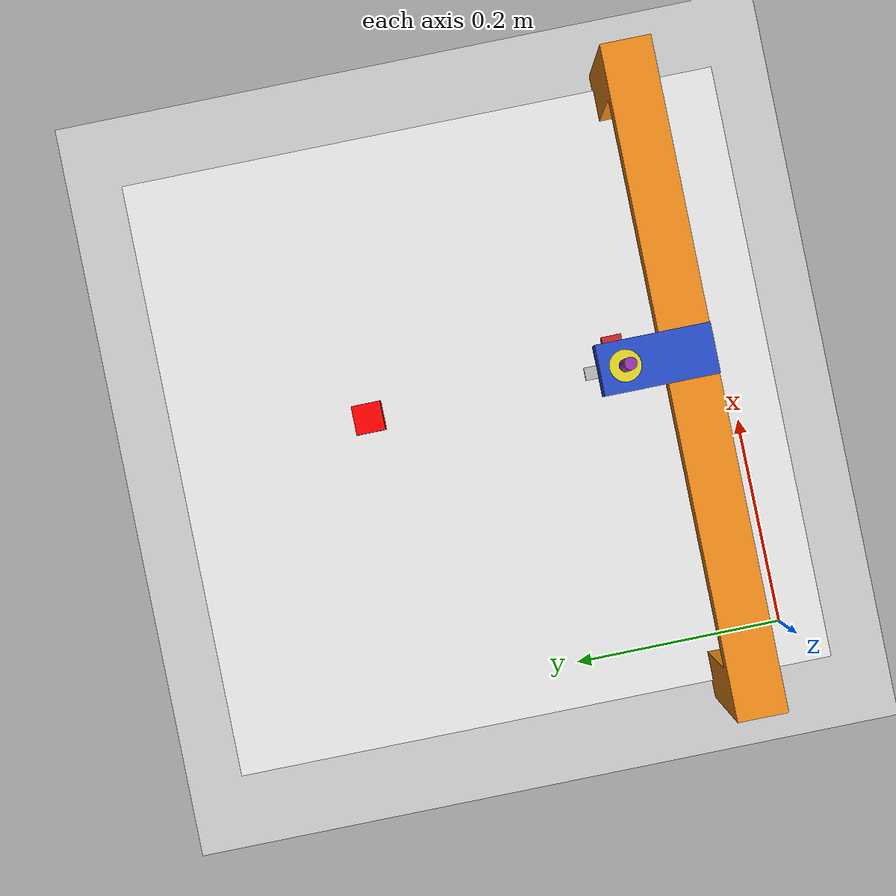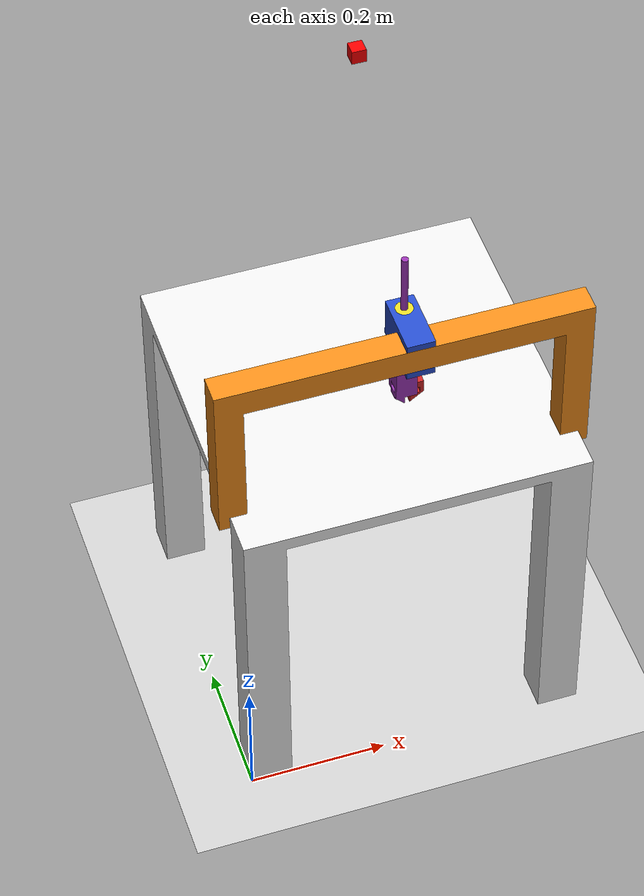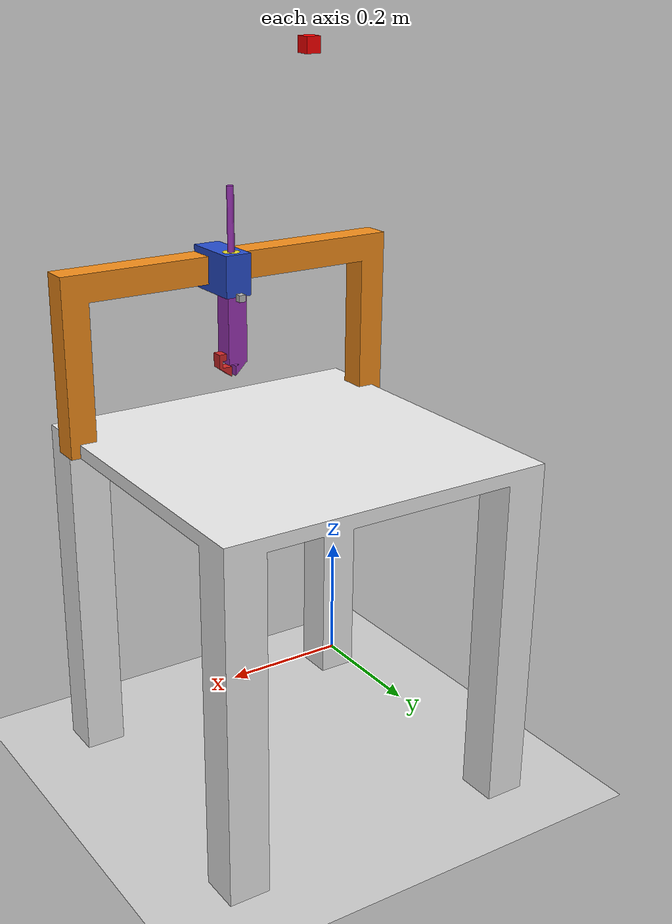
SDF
<sdf version="1.6">
 <world name="default">
  <light name="sun" type="directional">
   <pose>0 0 10 0 -0 0</pose>
   <diffuse>0.8 0.8 0.8 1</diffuse>
   <specular>0.1 0.1 0.1 1</specular>
   <attenuation>
    <range>1000</range>
    <constant>0.9</constant>
    <linear>0.01</linear>
    <quadratic>0.001</quadratic>
   </attenuation>
   <direction>-0.5 0.5 -1</direction>
  </light>
  <model name="ground_plane">
   <static>1</static>
   <link name="link">
    <collision name="collision">
     <geometry><plane><normal>0 0 1</normal><size>100 100</size></plane></geometry>
     <surface><friction><ode><mu>100</mu><mu2>50</mu2></ode></friction></surface>
    </collision>
    <visual name="visual">
     <cast_shadows>0</cast_shadows>
     <geometry><plane><normal>0 0 1</normal><size>100 100</size></plane></geometry>
     <material>
      <script><uri>file://media/materials/scripts/gazebo.material</uri><name>Gazebo/Grey</name></script>
     </material>
    </visual>
   </link>
  </model>
  <gravity>0 0 -9.8</gravity>
  <magnetic_field>6e-06 2.3e-05 -4.2e-05</magnetic_field>
  <atmosphere type="adiabatic"/>
  <physics name="default_physics" default="0" type="ode">
   <max_step_size>0.001</max_step_size>
   <real_time_factor>1</real_time_factor>
   <real_time_update_rate>1000</real_time_update_rate>
  </physics>
  <scene><ambient>0.4 0.4 0.4 1</ambient><background>0.7 0.7 0.7 1</background><shadows>1</shadows></scene>
  <spherical_coordinates>
   <surface_model>EARTH_WGS84</surface_model>
   <latitude_deg>0</latitude_deg>
   <longitude_deg>0</longitude_deg>
   <elevation>0</elevation>
   <heading_deg>0</heading_deg>
  </spherical_coordinates>
  <model name="robot">
   <link name="base_link">
    <inertial>
     <pose>0.249025 0.288536 0.424096 0 -0 0</pose>
     <mass>1200.2</mass>
     <inertia><ixx>0</ixx><ixy>0</ixy><ixz>0</ixz><iyy>0</iyy><iyz>0</iyz><izz>0</izz></inertia>
    </inertial>
    <collision name="base_link_collision">
     <geometry>
      <mesh><scale>1 1 1</scale><uri>/home/amin/robot_project/src/robot_sim/meshes/base_link.STL</uri></mesh>
     </geometry>
     <surface>
      <friction>
       <ode><mu>1</mu><mu2>1</mu2><fdir1>0 0 0</fdir1><slip1>0</slip1><slip2>0</slip2></ode>
       <torsional>
        <coefficient>1</coefficient>
        <patch_radius>0</patch_radius>
        <surface_radius>0</surface_radius>
        <use_patch_radius>1</use_patch_radius>
        <ode><slip>0</slip></ode>
       </torsional>
      </friction>
      <bounce><restitution_coefficient>0</restitution_coefficient><threshold>1e+06</threshold></bounce>
      <contact>
       <collide_without_contact>0</collide_without_contact>
       <collide_without_contact_bitmask>1</collide_without_contact_bitmask>
       <collide_bitmask>1</collide_bitmask>
       <ode>
        <soft_cfm>0</soft_cfm>
        <soft_erp>0.2</soft_erp>
        <kp>1e+10</kp>
        <kd>1</kd>
        <max_vel>0.1</max_vel>
        <min_depth>0.001</min_depth>
       </ode>
       <bullet>
        <split_impulse>1</split_impulse>
        <split_impulse_penetration_threshold>-0.01</split_impulse_penetration_threshold>
        <soft_cfm>0</soft_cfm>
        <soft_erp>0.2</soft_erp>
        <kp>1e+07</kp>
        <kd>1</kd>
       </bullet>
      </contact>
     </surface>
    </collision>
    <visual name="base_link_visual">
     <geometry>
      <mesh><scale>1 1 1</scale><uri>/home/amin/robot_project/src/robot_sim/meshes/base_link.STL</uri></mesh>
     </geometry>
     <material>
      <script><name>Gazebo/White</name><uri>file://media/materials/scripts/gazebo.material</uri></script>
     </material>
    </visual>
   </link>
   <link name="p1">
    <pose>0.249025 0.1 0.5 0 -0 0</pose>
    <inertial>
     <pose>0 0.185556 0.02 0 -0 0</pose>
     <mass>1.512</mass>
     <inertia><ixx>0</ixx><ixy>0</ixy><ixz>0</ixz><iyy>0</iyy><iyz>0</iyz><izz>0</izz></inertia>
    </inertial>
    <collision name="p1_collision">
     <geometry>
      <mesh><scale>1 1 1</scale><uri>/home/amin/robot_project/src/robot_sim/meshes/p1.STL</uri></mesh>
     </geometry>
     <surface>
      <friction>
       <ode><mu>1</mu><mu2>1</mu2><fdir1>0 0 0</fdir1><slip1>0</slip1><slip2>0</slip2></ode>
       <torsional>
        <coefficient>1</coefficient>
        <patch_radius>0</patch_radius>
        <surface_radius>0</surface_radius>
        <use_patch_radius>1</use_patch_radius>
        <ode><slip>0</slip></ode>
       </torsional>
      </friction>
      <bounce><restitution_coefficient>0</restitution_coefficient><threshold>1e+06</threshold></bounce>
      <contact>
       <collide_without_contact>0</collide_without_contact>
       <collide_without_contact_bitmask>1</collide_without_contact_bitmask>
       <collide_bitmask>1</collide_bitmask>
       <ode>
        <soft_cfm>0</soft_cfm>
        <soft_erp>0.2</soft_erp>
        <kp>1e+10</kp>
        <kd>1</kd>
        <max_vel>0.1</max_vel>
        <min_depth>0.001</min_depth>
       </ode>
       <bullet>
        <split_impulse>1</split_impulse>
        <split_impulse_penetration_threshold>-0.01</split_impulse_penetration_threshold>
        <soft_cfm>0</soft_cfm>
        <soft_erp>0.2</soft_erp>
        <kp>1e+07</kp>
        <kd>1</kd>
       </bullet>
      </contact>
     </surface>
    </collision>
    <visual name="p1_visual">
     <geometry>
      <mesh><scale>1 1 1</scale><uri>/home/amin/robot_project/src/robot_sim/meshes/p1.STL</uri></mesh>
     </geometry>
     <material>
      <script><name>Gazebo/Orange</name><uri>file://media/materials/scripts/gazebo.material</uri></script>
     </material>
    </visual>
   </link>
   <joint name="j1" type="prismatic">
    <child>p1</child>
    <parent>base_link</parent>
    <axis>
     <xyz>0 1 0</xyz>
     <limit><lower>-0.05</lower><upper>0.4</upper><effort>1000</effort><velocity>0.5</velocity></limit>
     <dynamics><spring_reference>0</spring_reference><spring_stiffness>0</spring_stiffness></dynamics>
     <use_parent_model_frame>1</use_parent_model_frame>
    </axis>
   </joint>
   <link name="p2">
    <pose>0.249025 0.06 0.71 0 -0 3.1415</pose>
    <inertial>
     <pose>-0.02 0.03 0.052048 0 -0 0</pose>
     <mass>0.122548</mass>
     <inertia><ixx>0</ixx><ixy>0</ixy><ixz>0</ixz><iyy>0</iyy><iyz>0</iyz><izz>0</izz></inertia>
    </inertial>
    <collision name="p2_collision">
     <geometry>
      <mesh><scale>1 1 1</scale><uri>/home/amin/robot_project/src/robot_sim/meshes/p2.STL</uri></mesh>
     </geometry>
     <surface>
      <friction>
       <ode><mu>1</mu><mu2>1</mu2><fdir1>0 0 0</fdir1><slip1>0</slip1><slip2>0</slip2></ode>
       <torsional>
        <coefficient>1</coefficient>
        <patch_radius>0</patch_radius>
        <surface_radius>0</surface_radius>
        <use_patch_radius>1</use_patch_radius>
        <ode><slip>0</slip></ode>
       </torsional>
      </friction>
      <bounce><restitution_coefficient>0</restitution_coefficient><threshold>1e+06</threshold></bounce>
      <contact>
       <collide_without_contact>0</collide_without_contact>
       <collide_without_contact_bitmask>1</collide_without_contact_bitmask>
       <collide_bitmask>1</collide_bitmask>
       <ode>
        <soft_cfm>0</soft_cfm>
        <soft_erp>0.2</soft_erp>
        <kp>1e+10</kp>
        <kd>1</kd>
        <max_vel>0.1</max_vel>
        <min_depth>0.001</min_depth>
       </ode>
       <bullet>
        <split_impulse>1</split_impulse>
        <split_impulse_penetration_threshold>-0.01</split_impulse_penetration_threshold>
        <soft_cfm>0</soft_cfm>
        <soft_erp>0.2</soft_erp>
        <kp>1e+07</kp>
        <kd>1</kd>
       </bullet>
      </contact>
     </surface>
    </collision>
    <visual name="p2_visual">
     <geometry>
      <mesh><scale>1 1 1</scale><uri>/home/amin/robot_project/src/robot_sim/meshes/p2.STL</uri></mesh>
     </geometry>
     <material>
      <script><name>Gazebo/Blue</name><uri>file://media/materials/scripts/gazebo.material</uri></script>
     </material>
    </visual>
   </link>
   <joint name="j2" type="prismatic">
    <child>p2</child>
    <parent>p1</parent>
    <axis>
     <xyz>-1 9.3e-05 0</xyz>
     <limit><lower>-0.23</lower><upper>0.27</upper><effort>1000</effort><velocity>0.5</velocity></limit>
     <dynamics><spring_reference>0</spring_reference><spring_stiffness>0</spring_stiffness></dynamics>
     <use_parent_model_frame>1</use_parent_model_frame>
    </axis>
   </joint>
   <link name="camera_link">
    <pose>0.269034 0.154998 0.71 -0 1.57 3.1415</pose>
    <inertial>
     <mass>1e-05</mass>
     <inertia><ixx>1e-06</ixx><ixy>0</ixy><ixz>0</ixz><iyy>1e-06</iyy><iyz>0</iyz><izz>1e-06</izz></inertia>
    </inertial>
    <visual name="camera_link_visual">
     <geometry><box><size>0.01 0.01 0.01</size></box></geometry>
     <material><script><uri>__default__</uri><name>__default__</name></script></material>
    </visual>
    <sensor name="camera1" type="camera">
     <update_rate>30</update_rate>
     <camera name="head">
      <horizontal_fov>1.39626</horizontal_fov>
      <image><width>800</width><height>800</height><format>R8G8B8</format></image>
      <clip><near>0.02</near><far>300</far></clip>
      <noise><type>gaussian</type><mean>0</mean><stddev>0.007</stddev></noise>
     </camera>
     <plugin name="camera_controller" filename="libgazebo_ros_camera.so">
      <alwaysOn>true</alwaysOn>
      <updateRate>0.0</updateRate>
      <cameraName>rrbot/camera1</cameraName>
      <imageTopicName>image_raw</imageTopicName>
      <cameraInfoTopicName>camera_info</cameraInfoTopicName>
      <frameName>camera_link</frameName>
      <hackBaseline>0.07</hackBaseline>
      <distortionK1>0.0</distortionK1>
      <distortionK2>0.0</distortionK2>
      <distortionK3>0.0</distortionK3>
      <distortionT1>0.0</distortionT1>
      <distortionT2>0.0</distortionT2>
      <robotNamespace>/</robotNamespace>
     </plugin>
    </sensor>
   </link>
   <joint name="camare_joints" type="prismatic">
    <child>camera_link</child>
    <parent>p2</parent>
    <axis>
     <xyz>1 -9.3e-05 -0.000796</xyz>
     <limit><lower>0</lower><upper>0.0001</upper><effort>1000</effort><velocity>0.5</velocity></limit>
     <dynamics><spring_reference>0</spring_reference><spring_stiffness>0</spring_stiffness></dynamics>
     <use_parent_model_frame>1</use_parent_model_frame>
    </axis>
   </joint>
   <link name="p3">
    <pose>0.269032 0.129998 0.75 -0 1.57 3.1415</pose>
    <inertial>
     <pose>0 -0.031069 0.000105 0 -0 0</pose>
     <mass>0.161431</mass>
     <inertia><ixx>0</ixx><ixy>0</ixy><ixz>0</ixz><iyy>0</iyy><iyz>0</iyz><izz>0</izz></inertia>
    </inertial>
    <collision name="p3_collision">
     <geometry>
      <mesh><scale>1 1 1</scale><uri>/home/amin/robot_project/src/robot_sim/meshes/p3.STL</uri></mesh>
     </geometry>
     <surface>
      <friction>
       <ode><mu>1</mu><mu2>1</mu2><fdir1>0 0 0</fdir1><slip1>0</slip1><slip2>0</slip2></ode>
       <torsional>
        <coefficient>1</coefficient>
        <patch_radius>0</patch_radius>
        <surface_radius>0</surface_radius>
        <use_patch_radius>1</use_patch_radius>
        <ode><slip>0</slip></ode>
       </torsional>
      </friction>
      <bounce><restitution_coefficient>0</restitution_coefficient><threshold>1e+06</threshold></bounce>
      <contact>
       <collide_without_contact>0</collide_without_contact>
       <collide_without_contact_bitmask>1</collide_without_contact_bitmask>
       <collide_bitmask>1</collide_bitmask>
       <ode>
        <soft_cfm>0</soft_cfm>
        <soft_erp>0.2</soft_erp>
        <kp>1e+10</kp>
        <kd>1</kd>
        <max_vel>0.1</max_vel>
        <min_depth>0.001</min_depth>
       </ode>
       <bullet>
        <split_impulse>1</split_impulse>
        <split_impulse_penetration_threshold>-0.01</split_impulse_penetration_threshold>
        <soft_cfm>0</soft_cfm>
        <soft_erp>0.2</soft_erp>
        <kp>1e+07</kp>
        <kd>1</kd>
       </bullet>
      </contact>
     </surface>
    </collision>
    <visual name="p3_visual">
     <pose>0.04 0 0 0 -0 1.57</pose>
     <geometry>
      <mesh><scale>1 1 1</scale><uri>/home/amin/robot_project/src/robot_sim/meshes/p3.STL</uri></mesh>
     </geometry>
     <material>
      <script><name>Gazebo/Yellow</name><uri>file://media/materials/scripts/gazebo.material</uri></script>
     </material>
    </visual>
   </link>
   <joint name="j3" type="revolute">
    <child>p3</child>
    <parent>p2</parent>
    <axis>
     <xyz>-0.000796 0 -1</xyz>
     <limit><lower>-1e+16</lower><upper>1e+16</upper></limit>
     <dynamics><spring_reference>0</spring_reference><spring_stiffness>0</spring_stiffness></dynamics>
     <use_parent_model_frame>1</use_parent_model_frame>
    </axis>
   </joint>
   <link name="p4">
    <pose>0.269032 0.129998 0.75 1.57 0.000796 -1.57089</pose>
    <inertial>
     <pose>0.01378 -0.002 0.008 0 -0 0</pose>
     <mass>2</mass>
     <inertia><ixx>0</ixx><ixy>0</ixy><ixz>0</ixz><iyy>0</iyy><iyz>0</iyz><izz>0</izz></inertia>
    </inertial>
    <collision name="p4_collision">
     <geometry>
      <mesh><scale>1 1 1</scale><uri>/home/amin/robot_project/src/robot_sim/meshes/p4.STL</uri></mesh>
     </geometry>
     <surface>
      <friction>
       <ode><mu>1</mu><mu2>1</mu2><fdir1>0 0 0</fdir1><slip1>0</slip1><slip2>0</slip2></ode>
       <torsional>
        <coefficient>1</coefficient>
        <patch_radius>0</patch_radius>
        <surface_radius>0</surface_radius>
        <use_patch_radius>1</use_patch_radius>
        <ode><slip>0</slip></ode>
       </torsional>
      </friction>
      <bounce><restitution_coefficient>0</restitution_coefficient><threshold>1e+06</threshold></bounce>
      <contact>
       <collide_without_contact>0</collide_without_contact>
       <collide_without_contact_bitmask>1</collide_without_contact_bitmask>
       <collide_bitmask>1</collide_bitmask>
       <ode>
        <soft_cfm>0</soft_cfm>
        <soft_erp>0.2</soft_erp>
        <kp>1e+10</kp>
        <kd>1</kd>
        <max_vel>0.1</max_vel>
        <min_depth>0.001</min_depth>
       </ode>
       <bullet>
        <split_impulse>1</split_impulse>
        <split_impulse_penetration_threshold>-0.01</split_impulse_penetration_threshold>
        <soft_cfm>0</soft_cfm>
        <soft_erp>0.2</soft_erp>
        <kp>1e+07</kp>
        <kd>1</kd>
       </bullet>
      </contact>
     </surface>
    </collision>
    <visual name="p4_visual">
     <geometry>
      <mesh><scale>1 1 1</scale><uri>/home/amin/robot_project/src/robot_sim/meshes/p4.STL</uri></mesh>
     </geometry>
     <material>
      <script><name>Gazebo/Purple</name><uri>file://media/materials/scripts/gazebo.material</uri></script>
     </material>
    </visual>
   </link>
   <joint name="j4" type="prismatic">
    <child>p4</child>
    <parent>p3</parent>
    <axis>
     <xyz>-0.000796 0.000796 -0.999999</xyz>
     <limit><lower>-0.006</lower><upper>0.066</upper><effort>1000</effort><velocity>0.5</velocity></limit>
     <dynamics><spring_reference>0</spring_reference><spring_stiffness>0</spring_stiffness></dynamics>
     <use_parent_model_frame>1</use_parent_model_frame>
    </axis>
   </joint>
   <link name="p5">
    <pose>0.268926 0.138604 0.616807 1.57159 0.000797 -0.000889</pose>
    <inertial>
     <pose>0.01378 -0.002 0.008 0 -0 0</pose>
     <mass>1</mass>
     <inertia><ixx>0</ixx><ixy>0</ixy><ixz>0</ixz><iyy>0</iyy><iyz>0</iyz><izz>0</izz></inertia>
    </inertial>
    <collision name="p5_collision">
     <geometry>
      <mesh><scale>1 1 1</scale><uri>/home/amin/robot_project/src/robot_sim/meshes/p5.STL</uri></mesh>
     </geometry>
     <surface>
      <friction>
       <ode><mu>1</mu><mu2>1</mu2><fdir1>0 0 0</fdir1><slip1>0</slip1><slip2>0</slip2></ode>
       <torsional>
        <coefficient>1</coefficient>
        <patch_radius>0</patch_radius>
        <surface_radius>0</surface_radius>
        <use_patch_radius>1</use_patch_radius>
        <ode><slip>0</slip></ode>
       </torsional>
      </friction>
      <bounce><restitution_coefficient>0</restitution_coefficient><threshold>1e+06</threshold></bounce>
      <contact>
       <collide_without_contact>0</collide_without_contact>
       <collide_without_contact_bitmask>1</collide_without_contact_bitmask>
       <collide_bitmask>1</collide_bitmask>
       <ode>
        <soft_cfm>0</soft_cfm>
        <soft_erp>0.2</soft_erp>
        <kp>1e+10</kp>
        <kd>1</kd>
        <max_vel>0.1</max_vel>
        <min_depth>0.001</min_depth>
       </ode>
       <bullet>
        <split_impulse>1</split_impulse>
        <split_impulse_penetration_threshold>-0.01</split_impulse_penetration_threshold>
        <soft_cfm>0</soft_cfm>
        <soft_erp>0.2</soft_erp>
        <kp>1e+07</kp>
        <kd>1</kd>
       </bullet>
      </contact>
     </surface>
    </collision>
    <visual name="p5_visual">
     <geometry>
      <mesh><scale>1 1 1</scale><uri>/home/amin/robot_project/src/robot_sim/meshes/p5.STL</uri></mesh>
     </geometry>
     <material>
      <script><name>Gazebo/Red</name><uri>file://media/materials/scripts/gazebo.material</uri></script>
     </material>
    </visual>
   </link>
   <joint name="j5" type="prismatic">
    <child>p5</child>
    <parent>p4</parent>
    <axis>
     <xyz>-0.999999 0.000889 0.000797</xyz>
     <limit><lower>-0.02</lower><upper>0.01</upper><effort>10</effort><velocity>0.5</velocity></limit>
     <dynamics><spring_reference>0</spring_reference><spring_stiffness>0</spring_stiffness></dynamics>
     <use_parent_model_frame>1</use_parent_model_frame>
    </axis>
   </joint>
   <static>0</static>
   <plugin name="gazebo_ros_control" filename="libgazebo_ros_control.so">
    <robotNamespace>/rrbot</robotNamespace>
   </plugin>
   <pose>-3e-05 3.4e-05 -0.000999 1e-06 4e-06 -7.4e-05</pose>
  </model>
  <model name="smallbox_1">
   <link name="link">
    <pose>0.04 0.010 0.52901 -0.008363 0.004373 0.002027</pose>
    <inertial>
     <mass>0.01</mass>
     <inertia><ixx>0.00017</ixx><ixy>0</ixy><ixz>0</ixz><iyy>0.00017</iyy><iyz>0</iyz><izz>0.0017</izz></inertia>
    </inertial>
    <visual name="visual">
     <geometry><box><size>0.02 0.02 0.02</size></box></geometry>
     <material>
      <ambient>1 0 0 1</ambient>
      <diffuse>1 0 0 1</diffuse>
      <specular>0.1 0.1 0.1 1</specular>
      <emissive>0 0 0 1</emissive>
      <script><name>ModelPreview_1::link::visual_MATERIAL_</name><uri>__default__</uri></script>
      <shader type="vertex"><normal_map>__default__</normal_map></shader>
     </material>
    </visual>
    <collision name="collision">
     <geometry><box><size>0.02 0.02 0.02</size></box></geometry>
     <surface>
      <friction>
       <ode><mu>1</mu><mu2>1</mu2><fdir1>0 0 0</fdir1><slip1>0</slip1><slip2>0</slip2></ode>
       <torsional>
        <coefficient>1</coefficient>
        <patch_radius>0</patch_radius>
        <surface_radius>0</surface_radius>
        <use_patch_radius>1</use_patch_radius>
        <ode><slip>0</slip></ode>
       </torsional>
      </friction>
      <bounce><restitution_coefficient>0</restitution_coefficient><threshold>1e+06</threshold></bounce>
      <contact>
       <collide_without_contact>0</collide_without_contact>
       <collide_without_contact_bitmask>1</collide_without_contact_bitmask>
       <collide_bitmask>1</collide_bitmask>
       <ode>
        <soft_cfm>0</soft_cfm>
        <soft_erp>0.2</soft_erp>
        <kp>1e+10</kp>
        <kd>1</kd>
        <max_vel>0.1</max_vel>
        <min_depth>0.001</min_depth>
       </ode>
       <bullet>
        <split_impulse>1</split_impulse>
        <split_impulse_penetration_threshold>-0.01</split_impulse_penetration_threshold>
        <soft_cfm>0</soft_cfm>
        <soft_erp>0.2</soft_erp>
        <kp>1e+07</kp>
        <kd>1</kd>
       </bullet>
      </contact>
     </surface>
    </collision>
   </link>
   <static>0</static>
   <pose>0.224652 0.30696 0.52901 -0.008363 0.004373 0.002027</pose>
  </model>
 </world>
</sdf>
